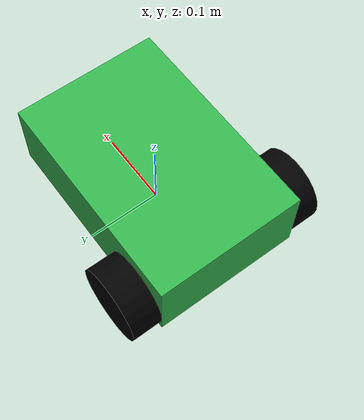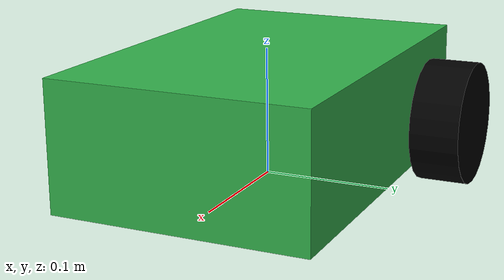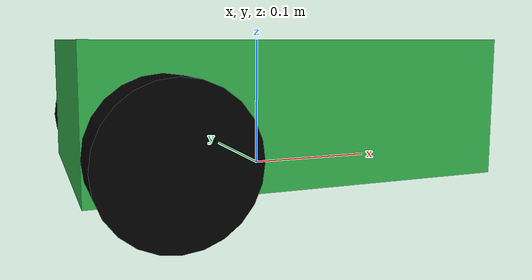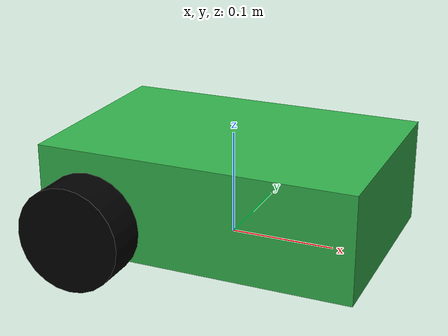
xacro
<?xml version="1.0"?>
<robot name="simple_robot" xmlns:xacro="http://www.ros.org/wiki/xacro">

  <!-- ===================== 材料定义 (全局复用) ===================== -->
  <material name="blue">
    <color rgba="0.2 0.7 0.3 1.0"/>
  </material>
  <material name="black">
    <color rgba="0.0 0.0 0.0 1.0"/>
  </material>
  <material name="gray">
    <color rgba="0.5 0.5 0.5 1.0"/>
  </material>

  <!-- ===================== 基础底盘 ===================== -->
  <link name="base_footprint"/>
  <joint name="base_footprint_joint" type="fixed">
    <parent link="base_footprint"/>
    <child link="base_link"/>
    <origin xyz="0 0 0.05" rpy="0 0 0"/>
  </joint>

  <link name="base_link">
    <visual>
      <geometry>
        <box size="0.3 0.2 0.1"/>
      </geometry>
      <material name="blue"/>
    </visual>

    <collision>
      <geometry>
        <box size="0.3 0.2 0.1"/>
      </geometry>
    </collision>

    <inertial>
      <mass value="5.0"/>
      <inertia ixx="0.1" ixy="0.0" ixz="0.0" iyy="0.2" iyz="0.0" izz="0.3"/>
    </inertial>
  </link>

  <!-- ===================== 轮子宏定义 (左右轮复用) ===================== -->
  <xacro:macro name="wheel_macro" params="name parent_link x y z">
    <link name="${name}_link">
      <visual>
        <geometry>
          <cylinder radius="0.05" length="0.04"/>
        </geometry>
        <material name="black"/>
      </visual>

      <collision>
        <geometry>
          <cylinder radius="0.05" length="0.04"/>
        </geometry>
      </collision>

      <inertial>
        <mass value="0.5"/>
        <inertia ixx="0.0001" ixy="0" ixz="0" iyy="0.0001" iyz="0" izz="0.0001"/>
      </inertial>
    </link>

    <joint name="${name}_joint" type="continuous">
      <parent link="${parent_link}"/>
      <child link="${name}_link"/>
      <origin xyz="${x} ${y} ${z}" rpy="0 1.5708 1.5708"/>
      <axis xyz="0 0 1"/>
    </joint>
  </xacro:macro>

  <!-- 实例化左右驱动轮 -->
  <xacro:wheel_macro name="wheel_left" parent_link="base_link" x="-0.1" y="0.12" z="-0.02"/>
  <xacro:wheel_macro name="wheel_right" parent_link="base_link" x="-0.1" y="-0.12" z="-0.02"/>

  <!-- ===================== 万向轮 ===================== -->
  <link name="caster_link">
    <visual>
      <geometry>
        <sphere radius="0.03"/>
      </geometry>
      <material name="gray"/>
    </visual>

    <collision>
      <geometry>
        <sphere radius="0.03"/>
      </geometry>
    </collision>

    <inertial>
      <mass value="0.3"/>
      <inertia ixx="0.0001" ixy="0" ixz="0" iyy="0.0001" iyz="0" izz="0.0001"/>
    </inertial>
  </link>

  <joint name="caster_joint" type="fixed">
    <parent link="base_link"/>
    <child link="caster_link"/>
    <origin xyz="0.1 0 -0.04"/>
  </joint>

  <!-- ===================== Gazebo 差速控制器 ===================== -->
  <gazebo>
    <plugin name="differential_drive_controller" filename="libgazebo_ros_diff_drive.so">
      <alwaysOn>true</alwaysOn>
      <leftJoint>wheel_left_joint</leftJoint>
      <rightJoint>wheel_right_joint</rightJoint>
      <wheelSeparation>0.24</wheelSeparation>
      <wheelDiameter>0.1</wheelDiameter>
      <torque>10</torque>
      <commandTopic>cmd_vel</commandTopic>
      <odometryTopic>odom</odometryTopic>
      <odometryFrame>odom</odometryFrame>
      <robotBaseFrame>base_link</robotBaseFrame>
    </plugin>
  </gazebo>

</robot>
